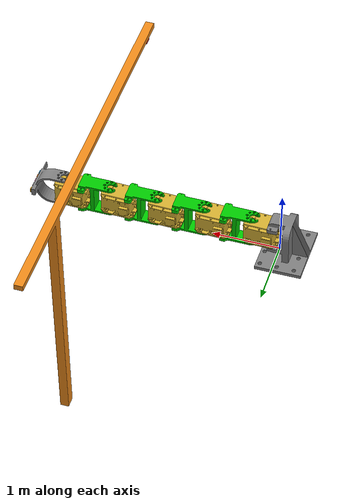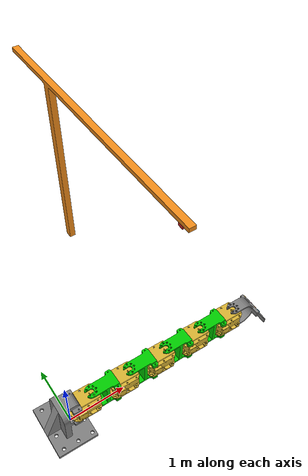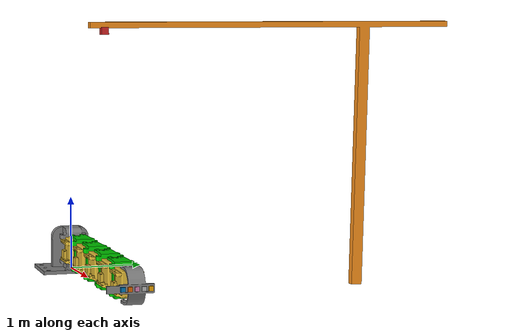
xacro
<?xml version="1.0"?>

<robot xmlns:xacro="http://www.ros.org/wiki/xacro" name="hand_tutorial">

 <xacro:macro name="default_inertial" params="mass">
    <inertial>
      <mass value="${mass}" />
      <inertia ixx="1.0" ixy="0.0" ixz="0.0" iyy="1.0" iyz="0.0" izz="1.0" />
    </inertial>
</xacro:macro>
<link name="world"/>

<link name="base_link">
	<visual>
	<geometry>
	<mesh filename="package://robot_description/meshes/ggwp.stl" />
	</geometry>
	<origin xyz="0 0 -0.05" rpy="0 0 0"/>
  <material name="grey">
    <color rgba="0.5 0.5 0.5 1.0"/>
  </material>
	</visual>
	<collision name="link_collision">
	<geometry>
	<mesh filename ="package://robot_description/meshes/ggwp.stl" />
	</geometry>
	<origin xyz="0 0 -0.05" rpy="0 0 0"/>
	</collision>
	<xacro:default_inertial mass="0.5"/>
</link>

<link name="m2m">
	<visual>
	<geometry>
	<mesh filename="package://robot_description/meshes/short.stl"/>
	</geometry>
	<origin rpy ="0 0 0" xyz="0 0 0"/>
  <material name="green">
    <color rgba="0.0 0.8 0.0 1.0"/>
  </material>
	</visual>
	<collision name="m2m_collision">
	<geometry>
	<mesh filename="package://robot_description/meshes/short.stl"/>
	</geometry>
	<origin rpy ="0 0 0" xyz="0 0 0"/>
	</collision>
	<xacro:default_inertial mass="0.01"/>
</link>

<link name="m2m01">
	<visual>
	<geometry>
	<mesh filename="package://robot_description/meshes/short.stl"/>
	</geometry>
	<origin rpy ="0 0 0" xyz="0 0 0"/>
	  <material name="green">
    <color rgba="0.0 0.8 0.0 1.0"/>
  </material>
	</visual>
	<collision name="m2m_collision01">
	<geometry>
	<mesh filename="package://robot_description/meshes/short.stl"/>
	</geometry>
	<origin rpy ="0 0 0" xyz="0 0 0"/>
	</collision>
	<xacro:default_inertial mass="0.01"/>
</link>

<link name="m2m02">
	<visual>
	<geometry>
	<mesh filename="package://robot_description/meshes/short.stl"/>
	</geometry>
	<origin rpy ="0 0 0" xyz="0 0 0"/>
	  <material name="green">
    <color rgba="0.0 0.8 0.0 1.0"/>
  </material>
	</visual>
	<collision name="m2m_collision01">
	<geometry>
	<mesh filename="package://robot_description/meshes/short.stl"/>
	</geometry>
	<origin rpy ="0 0 0" xyz="0 0 0"/>
	</collision>
	<xacro:default_inertial mass="0.01"/>
</link>

<link name="m2m03">
	<visual>
	<geometry>
	<mesh filename="package://robot_description/meshes/short.stl"/>
	</geometry>
	  <material name="green">
    <color rgba="0.0 0.8 0.0 1.0"/>
  </material>
	<origin rpy ="0 0 0" xyz="0 0 0"/>
	</visual>
	<collision name="m2m_collision01">
	<geometry>
	<mesh filename="package://robot_description/meshes/short.stl"/>
	</geometry>
	<origin rpy ="0 0 0" xyz="0 0 0"/>
	</collision>
	<xacro:default_inertial mass="0.01"/>
</link>

<link name="motor">
	<visual>
	<geometry>
	<mesh filename="package://robot_description/meshes/motor.stl"/>
	</geometry>
	<origin rpy ="0 0 3.14" xyz="0 0 0"/>
	</visual>
	<collision name="motor_collision">
	<geometry>
	<mesh filename="package://robot_description/meshes/motor.stl"/>
	</geometry>
	<origin rpy ="0 0 3.14" xyz="0 0 0"/>
	</collision>
	<xacro:default_inertial mass="1"/>
</link>

<link name="motor01">
	<visual>
	<geometry>
	<mesh filename="package://robot_description/meshes/motor.stl"/>
	</geometry>
	<origin rpy ="0 0 3.14" xyz="0 0 0"/>
	</visual>
	<collision name="motor_collision">
	<geometry>
	<mesh filename="package://robot_description/meshes/motor.stl"/>
	</geometry>
	<origin rpy ="0 0 3.14" xyz="0 0 0"/>
	</collision>
	<xacro:default_inertial mass="1"/>
</link>

<link name="motor02">
	<visual>
	<geometry>
	<mesh filename="package://robot_description/meshes/motor.stl"/>
	</geometry>
	<origin rpy ="0 0 3.14" xyz="0 0 0"/>
	</visual>
	<collision name="motor_collision">
	<geometry>
	<mesh filename="package://robot_description/meshes/motor.stl"/>
	</geometry>
	<origin rpy ="0 0 3.14" xyz="0 0 0"/>
	</collision>
	<xacro:default_inertial mass="1"/>
</link>

<link name="motor03">
	<visual>
	<geometry>
	<mesh filename="package://robot_description/meshes/motor.stl"/>
	</geometry>
	<origin rpy ="0 0 3.14" xyz="0 0 0"/>
	</visual>
	<collision name="motor_collision">
	<geometry>
	<mesh filename="package://robot_description/meshes/motor.stl"/>
	</geometry>
	<origin rpy ="0 0 3.14" xyz="0 0 0"/>
	</collision>
	<xacro:default_inertial mass="1"/>
</link>

<link name="motor04">
	<visual>
	<geometry>
	<mesh filename="package://robot_description/meshes/motor.stl"/>
	</geometry>
	<origin rpy ="0 0 3.14" xyz="0 0 0"/>
	</visual>
	<collision name="motor_collision">
	<geometry>
	<mesh filename="package://robot_description/meshes/motor.stl"/>
	</geometry>
	<origin rpy ="0 0 3.14" xyz="0 0 0"/>
	</collision>
	<xacro:default_inertial mass="1"/>
</link>

<link name="endeffector">
	<visual>
	<geometry>
	<mesh filename="package://robot_description/meshes/end_nosensor.STL"/>
	</geometry>
	<origin rpy= " 0 0 3.14" xyz ="0 0 0"/>
	  <material name="grey">
    <color rgba="0.5 0.5 0.5 1.0"/>
  </material>
	</visual>
	<collision name="end_collision">
	<geometry>
	<mesh filename="package://robot_description/meshes/end_nosensor.STL"/>
	</geometry>
	<origin rpy="0 0 3.14" xyz="0 0 0"/>
	</collision>
	<xacro:default_inertial mass="0.1"/>
</link>

<link name="sensor1">
	<visual>
	<geometry>
	<box size="0.03 0.06 0.06"/>
	</geometry>
	</visual>
	<collision name="sensor1_collision">
	<geometry>
	<box size="0.03 0.06 0.06"/>
	</geometry>
	</collision>
	<xacro:default_inertial mass="0.01"/>
</link>

<link name="sensor2">
	<visual>
	<geometry>
	<box size="0.03 0.06 0.06"/>
	</geometry>
	</visual>
	<collision name="sensor2_collision">
	<geometry>
	<box size="0.03 0.06 0.06"/>
	</geometry>
	</collision>
	<xacro:default_inertial mass="0.01"/>
</link>

<link name="sensor3">
	<visual>
	<geometry>
	<box size="0.03 0.06 0.06"/>
	</geometry>
	</visual>
	<collision name="sensor3_collision">
	<geometry>
	<box size="0.03 0.06 0.06"/>
	</geometry>
	</collision>
	<xacro:default_inertial mass="0.01"/>
</link>

<link name="sensor4">
	<visual>
	<geometry>
	<box size="0.03 0.06 0.06"/>
	</geometry>
	</visual>
	<collision name="sensor4_collision">
	<geometry>
	<box size="0.03 0.06 0.06"/>
	</geometry>
	</collision>
	<xacro:default_inertial mass="0.01"/>
</link>

<link name="sensor5">
	<visual>
	<geometry>
	<box size="0.03 0.06 0.06"/>
	</geometry>
	</visual>
	<collision name="sensor5_collision">
	<geometry>
	<box size="0.03 0.06 0.06"/>
	</geometry>
	</collision>
	<xacro:default_inertial mass="0.01"/>
</link>

<link name ="sensor_frame">
	<visual>
	<geometry>
		<box size = "0.01 0.01 0.01"/>
	</geometry>
		<origin rpy= " 0 0 0" xyz ="0 0 0"/>
  </visual>
	<collision>
		<geometry>
			<box size="0.01 0.01 0.01"/>
		</geometry>
	</collision>
</link>

  <link name="balka">
    <visual>
      <geometry>
        <mesh filename="package://robot_description/meshes/balka.stl"/>
      </geometry>
    <origin rpy ="3.14 0 3.14" xyz ="2 3.5 -0.1"/>
    </visual>

    <xacro:default_inertial mass="0.01"/>
  </link>

  <link name="camera_link">
    <collision>
      <origin xyz="0 0 0" rpy="3.14 1.57 0"/>
      <geometry>
    <box size="0.5 0.5 0.5"/>
      </geometry>
    </collision>

    <visual>
      <origin xyz="0 0 0" rpy="0 0 0"/>
      <geometry>
    <box size="0.1 0.1 0.1"/>
      </geometry>
      <material name="red"/>
    </visual>

    <xacro:default_inertial mass="0.01"/>
  </link>

<joint name="basetoworld" type="fixed">
	<parent link="world"/>
	<child link="base_link"/>
</joint>

<joint name="balkaworld" type="fixed">
  <parent link="world"/>
  <child link="balka"/>
</joint>

<joint name="basetomotor" type="fixed">

	<parent link="base_link"/>
	<child link="motor"/>
	<origin xyz ="0.267 0 0.23"/>
</joint>

<joint name="motortom2m" type="revolute">
	<parent link="motor"/>
	<child link="m2m"/>
	<origin xyz ="0.12 0 -0.178"/>
	<axis xyz = "0 0 1"/>
	<limit effort="1000.0" lower="-2.0" upper="2.0" velocity="0.5"/>
</joint>

<joint name="joint1" type="fixed">
	<parent link ="m2m"/>
	<child link ="motor01"/>

	<origin xyz = "0.59 0 0.17"/>
	<limit effort="0" lower = "0.0" upper="0.0" velocity="0.0"/>
</joint>

<joint name="joint2" type="revolute">
	<parent link="motor01"/>
	<child link="m2m01"/>
	<origin xyz ="0.12 0 -0.178"/>
	<axis xyz = "0 0 1"/>
	<limit effort="1000.0" lower="-2.0" upper="2.0" velocity="0.5"/>
</joint>

<joint name="joint3" type ="fixed">
	<parent link ="m2m01"/>
	<child link="motor02"/>
	<origin xyz = "0.59 0 0.17"/>
	<limit effort="0" lower = "0.0" upper="0.0" velocity="0.0"/>
</joint>

<joint name="joint4" type="revolute">
	<parent link="motor02"/>
	<child link="m2m02"/>
	<origin xyz ="0.12 0 -0.178"/>
	<axis xyz = "0 0 1"/>
	<limit effort="1000.0" lower="-2.0" upper="2.0" velocity="0.5"/>
</joint>

<joint name="joint5" type ="fixed">
	<parent link ="m2m02"/>
	<child link="motor03"/>
	<origin xyz = "0.59 0 0.17"/>
	<limit effort="0" lower = "0.0" upper="0.0" velocity="0.0"/>
</joint>

<joint name="joint6" type="revolute">
	<parent link="motor03"/>
	<child link="m2m03"/>
	<origin xyz ="0.12 0 -0.178"/>
	<axis xyz = "0 0 1"/>
	<limit effort="1000.0" lower="-2.0" upper="2.0" velocity="0.5"/>
</joint>

<joint name="joint7" type ="fixed">
	<parent link ="m2m03"/>
	<child link="motor04"/>
	<origin xyz = "0.59 0 0.17"/>
	<limit effort="0" lower = "0.0" upper="0.0" velocity="0.0"/>
</joint>

<joint name="end" type="revolute">
	<parent link="motor04"/>
	<child link ="endeffector"/>
	<origin xyz="0.12 -0.01 -0.178"/>
	<axis xyz = "0 0 1"/>
	<limit effort="1000.0" lower = "-2.0" upper="2.0" velocity="0.5"/>
</joint>

<joint name="first_sensor" type="fixed">
	<parent link="endeffector"/>
	<child link="sensor1"/>
	<origin xyz= "0.469 -0.19 0.225"/>
	<limit effort="0" lower = "0.0" upper="0.0" velocity="0.0"/>
</joint>

<joint name="second_sensor" type="fixed">
	<parent link="endeffector"/>
	<child link="sensor2"/>
	<origin xyz= "0.469 -0.1 0.225"/>
	<limit effort="0" lower = "0.0" upper="0.0" velocity="0.0"/>
</joint>

<joint name="third_sensor" type="fixed">
	<parent link="endeffector"/>
	<child link="sensor3"/>
	<origin xyz= "0.469 -0.01 0.225"/>
	<limit effort="0" lower = "0.0" upper="0.0" velocity="0.0"/>
</joint>

<joint name="4_sensor" type="fixed">
	<parent link="endeffector"/>
	<child link="sensor4"/>
	<origin xyz= "0.469 0.08 0.225"/>
	<limit effort="0" lower = "0.0" upper="0.0" velocity="0.0"/>
</joint>

<joint name="5_sensor" type="fixed">
	<parent link="endeffector"/>
	<child link="sensor5"/>
	<origin xyz= "0.469 0.17 0.225"/>
	<limit effort="0" lower = "0.0" upper="0.0" velocity="0.0"/>
</joint>

<joint name="sensor" type="fixed">
	<parent link ="endeffector"/>
	<child link="sensor_frame"/>
	<origin xyz = "0.475 0.005 0.23"/>
	<limit effort="0" lower = "0.0" upper="0.0" velocity="0.0"/>
</joint>

<joint name="camera_joint" type="fixed">
    <axis xyz="0 1 0" />
    <origin xyz="2 0 3.4" rpy="0 1.57 0"/>
    <parent link="balka"/>
    <child link="camera_link"/>
  </joint>

<transmission name="tran1">
    <type>transmission_interface/SimpleTransmission</type>
    <joint name="motortom2m">
      <hardwareInterface>hardware_interface/EffortJointInterface</hardwareInterface>
    </joint>
    <actuator name="motor1">
      <hardwareInterface>hardware_interface/EffortJointInterface</hardwareInterface>
      <mechanicalReduction>1</mechanicalReduction>
    </actuator>
  </transmission>

<transmission name="tran2">
    <type>transmission_interface/SimpleTransmission</type>
    <joint name="joint2">
      <hardwareInterface>hardware_interface/EffortJointInterface</hardwareInterface>
    </joint>
    <actuator name="motor2">
      <hardwareInterface>hardware_interface/EffortJointInterface</hardwareInterface>
      <mechanicalReduction>1</mechanicalReduction>
    </actuator>
  </transmission>

<transmission name="tran3">
    <type>transmission_interface/SimpleTransmission</type>
    <joint name="joint4">
      <hardwareInterface>hardware_interface/EffortJointInterface</hardwareInterface>
    </joint>
    <actuator name="motor3">
      <hardwareInterface>hardware_interface/EffortJointInterface</hardwareInterface>
      <mechanicalReduction>1</mechanicalReduction>
    </actuator>
  </transmission>

<transmission name="tran4">
    <type>transmission_interface/SimpleTransmission</type>
    <joint name="joint6">
      <hardwareInterface>hardware_interface/EffortJointInterface</hardwareInterface>
    </joint>
    <actuator name="motor4">
      <hardwareInterface>hardware_interface/EffortJointInterface</hardwareInterface>
      <mechanicalReduction>1</mechanicalReduction>
    </actuator>
  </transmission>

<transmission name="tran4">
    <type>transmission_interface/SimpleTransmission</type>
    <joint name="end">
      <hardwareInterface>hardware_interface/EffortJointInterface</hardwareInterface>
    </joint>
    <actuator name="motor5">
      <hardwareInterface>hardware_interface/EffortJointInterface</hardwareInterface>
      <mechanicalReduction>1</mechanicalReduction>
    </actuator>
  </transmission>

  <gazebo reference="m2m">
         <material>Gazebo/Grey</material>
  </gazebo>

  <gazebo reference="m2m01">
         <material>Gazebo/Grey</material>
  </gazebo>

  <gazebo reference="m2m02">
         <material>Gazebo/Grey</material>
  </gazebo>

  <gazebo reference="m2m03">
         <material>Gazebo/Grey</material>
  </gazebo>

  <gazebo reference="base_link">
         <material>Gazebo/Grey</material>
  </gazebo>

  <gazebo reference="motor">
         <material>Gazebo/Gold</material>
  </gazebo>

  <gazebo reference="motor01">
         <material>Gazebo/Gold</material>
  </gazebo>

  <gazebo reference="motor02">
         <material>Gazebo/Gold</material>
  </gazebo>

  <gazebo reference="motor03">
         <material>Gazebo/Gold</material>
  </gazebo>

  <gazebo reference="motor04">
         <material>Gazebo/Gold</material>
  </gazebo>

  <gazebo reference="endeffector">
         <material>Gazebo/Grey</material>
  </gazebo>

  <gazebo reference="camera_link">
         <material>Gazebo/Red</material>
  </gazebo>

  <gazebo reference="balka">
         <material>Gazebo/Orange</material>
  </gazebo>

  <gazebo reference="sensor_frame">
         <material>Gazebo/Blue</material>
  </gazebo>

 <!-- ros_control plugin -->
  <gazebo>
    <plugin name="gazebo_ros_control" filename="libgazebo_ros_control.so">
      <robotNamespace>/robot</robotNamespace>

    </plugin>
  </gazebo>

<gazebo reference="sensor1">
  <kp>1000000.0</kp>
  <kd>100.0</kd>
  <mu1>1.0</mu1>
  <mu2>1.0</mu2>
  <maxVel>1.0</maxVel>
    <sensor name="end_sensor1" type="contact">
      <always_on>true</always_on>
      <update_rate>50</update_rate>
      <contact>
        <collision>endeffector_fixed_joint_lump__sensor1_collision_collision_3</collision>
      </contact>
      <plugin name="gazebo_ros_bumper_controller1" filename="libgazebo_ros_bumper.so">
        <bumperTopicName>robot_sensor1</bumperTopicName>
        <alwaysOn>true</alwaysOn>
        <frameName>sensor1</frameName>
        <updateRate>0</updateRate>
      </plugin>
    </sensor>
 </gazebo>

<gazebo reference="sensor2">
  <kp>1000000.0</kp>
  <kd>100.0</kd>
  <mu1>1.0</mu1>
  <mu2>1.0</mu2>
  <maxVel>1.0</maxVel>
    <sensor name="end_sensor2" type="contact">
      <always_on>true</always_on>
      <update_rate>50</update_rate>
      <contact>
        <collision>endeffector_fixed_joint_lump__sensor2_collision_collision_4</collision>
      </contact>
      <plugin name="gazebo_ros_bumper_controller2" filename="libgazebo_ros_bumper.so">
        <bumperTopicName>robot_sensor2</bumperTopicName>
        <alwaysOn>true</alwaysOn>
        <frameName>sensor2</frameName>
        <updateRate>0</updateRate>
      </plugin>
    </sensor>
 </gazebo>

<gazebo reference="sensor3">
  <kp>1000000.0</kp>
  <kd>100.0</kd>
  <mu1>1.0</mu1>
  <mu2>1.0</mu2>
  <maxVel>1.0</maxVel>
    <sensor name="end_sensor3" type="contact">
      <always_on>true</always_on>
      <update_rate>50</update_rate>
      <contact>
        <collision>endeffector_fixed_joint_lump__sensor3_collision_collision_6</collision>
      </contact>
      <plugin name="gazebo_ros_bumper_controller3" filename="libgazebo_ros_bumper.so">
        <bumperTopicName>robot_sensor3</bumperTopicName>
        <alwaysOn>true</alwaysOn>
        <frameName>sensor3</frameName>
        <updateRate>0</updateRate>
      </plugin>
    </sensor>
 </gazebo>

<gazebo reference="sensor4">
  <kp>1000000.0</kp>
  <kd>100.0</kd>
  <mu1>1.0</mu1>
  <mu2>1.0</mu2>
  <maxVel>1.0</maxVel>
    <sensor name="end_sensor4" type="contact">
      <always_on>true</always_on>
      <update_rate>50</update_rate>
      <contact>
        <collision>endeffector_fixed_joint_lump__sensor4_collision_collision_1</collision>
      </contact>
      <plugin name="gazebo_ros_bumper_controller4" filename="libgazebo_ros_bumper.so">
        <bumperTopicName>robot_sensor4</bumperTopicName>
        <alwaysOn>true</alwaysOn>
        <frameName>sensor4</frameName>
        <updateRate>0</updateRate>
      </plugin>
    </sensor>
 </gazebo>

<gazebo reference="sensor5">
                  <kp>1000000.0</kp>
                  <kd>100.0</kd>
                  <mu1>1.0</mu1>
                  <mu2>1.0</mu2>
                  <maxVel>1.0</maxVel>
    <sensor name="end_sensor5" type="contact">
      <always_on>true</always_on>
      <update_rate>50</update_rate>
      <contact>
        <collision>endeffector_fixed_joint_lump__sensor5_collision_collision_2</collision>
      </contact>
      <plugin name="gazebo_ros_bumper_controller5" filename="libgazebo_ros_bumper.so">
        <bumperTopicName>robot_sensor5</bumperTopicName>
        <alwaysOn>true</alwaysOn>
        <frameName>sensor5</frameName>
        <updateRate>0</updateRate>
      </plugin>
    </sensor>
 </gazebo>

  <gazebo reference="camera_link">
    <sensor type="camera" name="camera1">
      <update_rate>100.0</update_rate>
      <camera name="head">
        <horizontal_fov>1.3962634</horizontal_fov>
        <image>
          <width>640</width>
          <height>480</height>
          <format>R8G8B8</format>
        </image>
        <clip>
          <near>0.02</near>
          <far>300</far>
        </clip>
        <noise>
          <type>gaussian</type>

          <mean>0.0</mean>
          <stddev>0.007</stddev>
        </noise>
      </camera>
      <plugin name="camera_controller" filename="libgazebo_ros_camera.so">
        <alwaysOn>true</alwaysOn>
        <updateRate>0.0</updateRate>
        <cameraName>robot/camera1</cameraName>
        <imageTopicName>image_raw</imageTopicName>
        <cameraInfoTopicName>camera_info</cameraInfoTopicName>
        <frameName>camera_link</frameName>
        <hackBaseline>0.07</hackBaseline>
        <distortionK1>0.0</distortionK1>
        <distortionK2>0.0</distortionK2>
        <distortionK3>0.0</distortionK3>
        <distortionT1>0.0</distortionT1>
        <distortionT2>0.0</distortionT2>
      </plugin>
    </sensor>
  </gazebo>
</robot>
